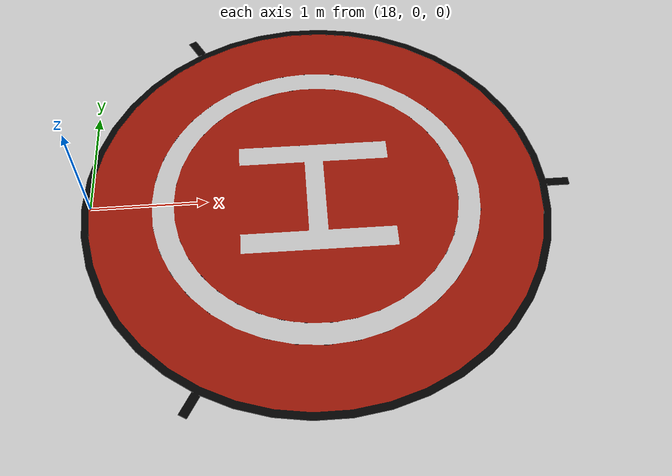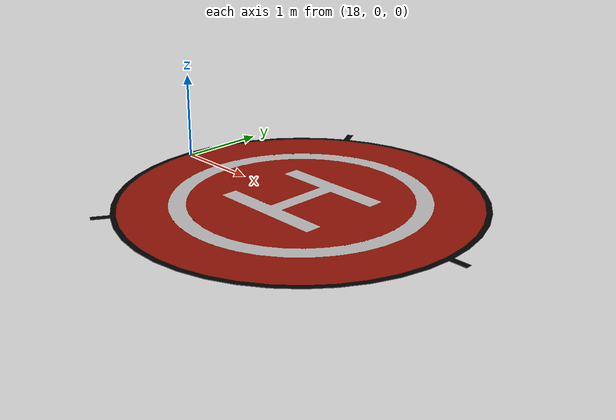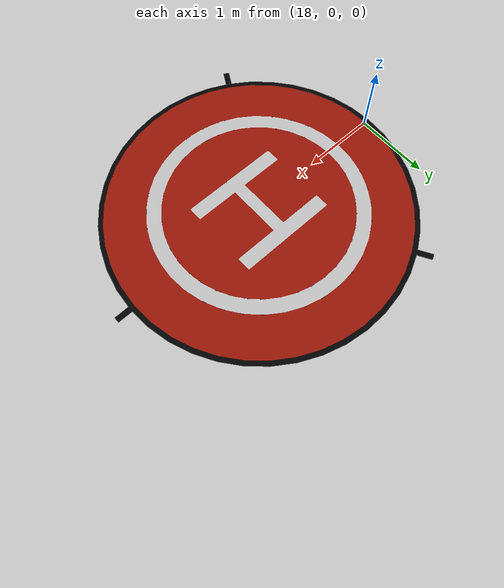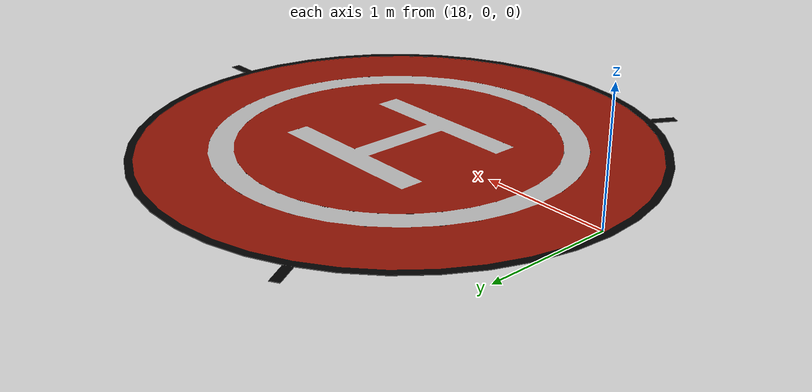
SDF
<?xml version="1.0"?>
<sdf version='1.9'>
  <world name='minimal_landing_pad'>
    <physics type="ode">
      <max_step_size>0.004</max_step_size>
      <real_time_factor>1.0</real_time_factor>
      <real_time_update_rate>250</real_time_update_rate>
    </physics>
    <plugin name='gz::sim::systems::Physics' filename='gz-sim-physics-system'/>
    <plugin name='gz::sim::systems::UserCommands' filename='gz-sim-user-commands-system'/>
    <plugin name='gz::sim::systems::SceneBroadcaster' filename='gz-sim-scene-broadcaster-system'/>
    <plugin name='gz::sim::systems::Contact' filename='gz-sim-contact-system'/>
    <plugin name='gz::sim::systems::Imu' filename='gz-sim-imu-system'/>
    <plugin name='gz::sim::systems::AirPressure' filename='gz-sim-air-pressure-system'/>
    <plugin name='gz::sim::systems::Sensors' filename='gz-sim-sensors-system'>
      <render_engine>ogre2</render_engine>
    </plugin>
    <gravity>0 0 -9.8</gravity>
    <atmosphere type='adiabatic'/>
    <scene>
      <ambient>0.8 0.5 1</ambient>
      <grid>false</grid>
      <sky>
        <clouds>false</clouds>
      </sky>
      <shadows>1</shadows>
    </scene>
    <light name='sunUTC' type='directional'>
      <pose>0 0 500 0 -0 0</pose>
      <cast_shadows>false</cast_shadows>
      <intensity>1</intensity>
      <direction>0.001 0.625 -0.78</direction>
      <diffuse>0.904 0.904 0.904 1</diffuse>
      <specular>0.271 0.271 0.271 1</specular>
      <attenuation>
        <range>2000</range>
        <linear>0</linear>
        <constant>1</constant>
        <quadratic>0</quadratic>
      </attenuation>
    </light>
    <include>
      <uri>file:///home/developer/workspace/worlds/LandingPad</uri>
      <name>landing_pad</name>
      <pose>20 0 0 0 0 0</pose>
      <static>true</static>
    </include>
  </world>
</sdf>

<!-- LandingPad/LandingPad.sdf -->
<sdf version='1.10'>
    <model name='landing_pad'>
    	<pose> 0 0 0 3.14 0 0 </pose>
        <link name='base_link'>
            <collision name='base_link_collision'>
                <geometry>
                    <cylinder>
                        <radius>2.032</radius>
                        <length>0.003048</length>
                    </cylinder>
                </geometry>
            </collision>
            <visual name='base_link_visual'>
                <geometry>
                    <mesh>
                        <uri>file:///home/developer/workspace/worlds/LandingPad/LandingPad.dae</uri>
                        <scale>5 5 5</scale>
                    </mesh>
                </geometry>
            </visual>
        </link>
    </model>
</sdf>
